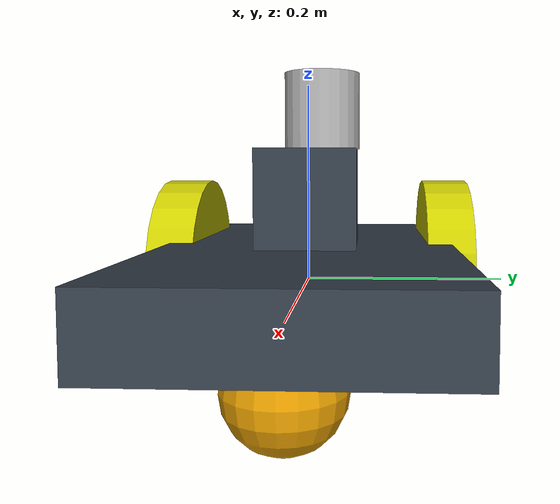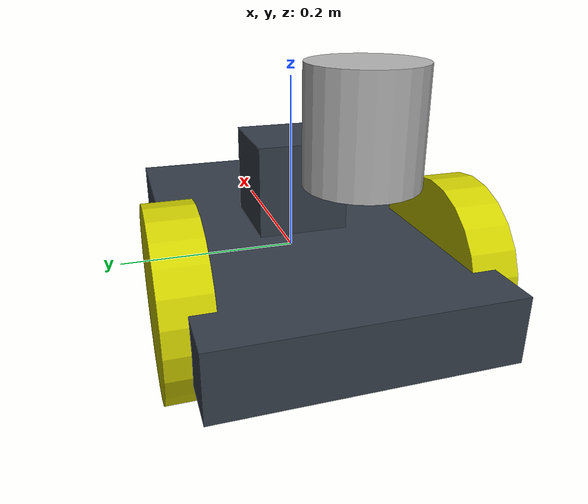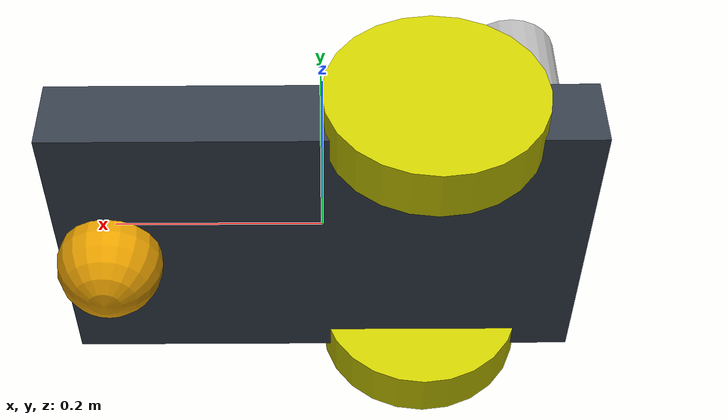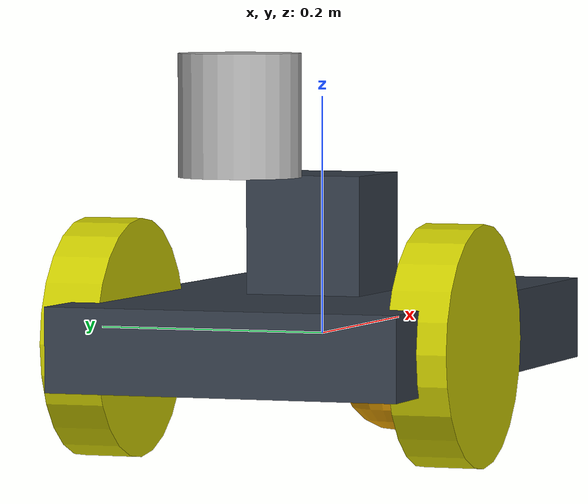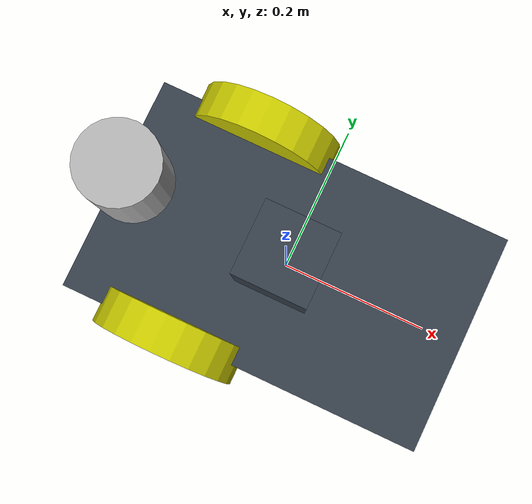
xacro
<?xml version='1.0'?>
<robot name="erl1" xmlns:xacro="http://www.ros.org/wiki/xacro">

    <!-- INCLUDE -->
    <xacro:include filename="$(find erl1)/urdf/erl1.gazebo" />

    <!-- PROPERTY -->
    <xacro:property name="length_wheel" value="0.05" />
    <xacro:property name="radius_wheel" value="0.1" />

    <!-- MACRO for wheels -->
    <xacro:macro name="default_inertial" params="mass">
    <inertial>
        <mass value="${mass}" />
        <origin rpy="0 1.5707 1.5707" xyz="0 0 0"/>
        <inertia
        ixx="${mass*(3*radius_wheel**2+length_wheel**2)/12}" ixy="0" ixz="0"
        iyy="${mass*(3*radius_wheel**2+length_wheel**2)/12}" iyz="0"
        izz="${mass*radius_wheel**2/2}"/>
    </inertial>
    </xacro:macro>

    <xacro:macro name="wheel_geometry">
        <origin xyz="0 0 0" rpy="0 1.5707 1.5707"/>
        <geometry>
        <cylinder length="${length_wheel}" radius="${radius_wheel}"/>
        </geometry>
    </xacro:macro>

    <xacro:macro name="wheel_collision">
        <origin xyz="0 0 0" rpy="0 1.5707 1.5707"/>
        <geometry>
            <cylinder radius="${radius_wheel}" length="${length_wheel}"/>
        </geometry>
    </xacro:macro>

    <!-- MATERIAL -->
    <material name="blue">
        <color rgba="0.203125 0.23828125 0.28515625 1.0"/>
    </material>

    <material name="yellow">
        <color rgba="0.8 0.8 0 1.0"/>
    </material>

    <material name="green">
        <color rgba="0.2 0.8 0.3 1.0"/>
    </material>

    <!-- ......................................................................LINKS -->
    <!-- LINK CHASSIS -->
    <link name="link_chassis">
        <!-- inertial -->
        <inertial>
            <mass value="5"/>
            <origin rpy="0 0 0" xyz="0 0 0"/>
            <inertia ixx="0.0395416666667" ixy="0" ixz="0" iyy="0.106208333333" iyz="0" izz="0.141666666667"/>
        </inertial>

        <!-- body -->
        <collision name="collision_chassis">
            <geometry>
                <box size="0.5 0.3 0.07"/>
            </geometry>
        </collision>
        <visual>
            <origin rpy="0 0 0" xyz="0 0 0"/>
            <geometry>
                <box size="0.5 0.3 0.07"/>
            </geometry>
            <material name="blue"/>
        </visual>

        <!-- caster front -->
        <collision name="caster_front_collision">
            <origin rpy="0 0 0" xyz="0.2 0 -0.05"/>
            <geometry>
                <sphere radius="0.05"/>
            </geometry>
        </collision>
        <visual name="caster_front_visual">
            <origin rpy="0 0 0" xyz="0.2 0 -0.05"/>
            <geometry>
                <sphere radius="0.05"/>
            </geometry>
        </visual>
    </link>

    <!-- LINK LEFT-WHEEL -->
    <link name='left_wheel'>
        <xacro:default_inertial mass="5.0" />
        <collision>
            <xacro:wheel_collision/>
        </collision>
        <visual name='left_wheel_visual'>
            <xacro:wheel_geometry/>
            <material name="yellow"/>
        </visual>
    </link>

    <!-- LINK RIGHT-WHEEL -->
    <link name='right_wheel'>
        <xacro:default_inertial mass="5.0" />
        <collision>
            <xacro:wheel_collision/>
        </collision>
        <visual name='right_wheel_visual'>
            <xacro:wheel_geometry/>
            <material name="yellow"/>
        </visual>
    </link>

    <!-- CAMERA LINK -->
    <link name="camera_link">
        <visual name="camera_link">
            <origin xyz="0 0 0.05" rpy="0 0 0"/>
            <geometry>
                <box size="0.1 0.1 0.1"/>
            </geometry>
            <material name="blue"/>
        </visual>
        <collision>
            <origin xyz="0 0 0.05" rpy="0 0 0"/>
            <geometry>
                <box size="0.1 0.1 0.1"/>
            </geometry>
        </collision>
        <inertial>
            <mass value="0.3"/>
            <origin xyz="0 0 0.05" rpy="0 0 0"/>
            <inertia
                ixx="0.0005" ixy="0" ixz="0"
                iyy="0.0005" iyz="0"
                izz="0.0005"/>
        </inertial>
    </link>

    <!-- CAMERA LINK OPTICAL -->
    <link name="camera_link_optical">
    </link>

    <!-- IMU LINK -->
    <link name="imu_link">
    </link>

    <!-- GPS LINK -->
    <link name="navsat_link">
    </link>

    <!-- LIDAR LINK -->
    <link name='scan_link'>
        <inertial>
            <mass value="1e-5"/>
            <origin xyz="0 0 0" rpy="0 0 0"/>
            <inertia
                ixx="1e-6" ixy="0" ixz="0"
                iyy="1e-6" iyz="0"
                izz="1e-6"/>
        </inertial>
        <collision name='collision'>
            <origin xyz="0 0 0" rpy="0 0 0"/>
            <geometry>
                <box size=".1 .1 .1"/>
            </geometry>
        </collision>
        <visual name='scan_link_visual'>
            <origin xyz="0 0 0" rpy="0 0 0"/>
            <geometry>
                <cylinder radius="0.05" length="0.1"/>
            </geometry>
        </visual>
    </link>

    <!-- ......................................................................JOINTS -->
    <!-- JOINT LEFT-WHEEL -->
    <joint type="continuous" name="left_wheel_joint">
        <origin xyz="-0.1 0.15 0" rpy="0 0 0"/>
        <child link="left_wheel"/>
        <parent link="link_chassis"/>
        <axis xyz="0 1 0"/>
        <limit effort="100" velocity="10"/>
        <dynamics damping="1.0" friction="1.0"/>
    </joint>

    <!-- JOINT RIGHT-WHEEL -->
    <joint type="continuous" name="right_wheel_joint">
        <origin xyz="-0.1 -0.15 0" rpy="0 0 0"/>
        <child link="right_wheel"/>
        <parent link="link_chassis"/>
        <axis xyz="0 1 0"/>
        <limit effort="100" velocity="10"/>
        <dynamics damping="1.0" friction="1.0"/>
    </joint>

    <!-- JOINT CAMERA -->
    <joint name="camera_joint" type="revolute">
        <parent link="link_chassis"/>
        <child link="camera_link"/>
        <origin xyz="0 0 0.035" rpy="0 0 0"/>
        <axis xyz="0 0 1"/>
        <limit lower="-1.57" upper="1.57" effort="5" velocity="1.0"/>
    </joint>

    <!-- JOINT CAMERA OPTICAL -->
    <joint type="fixed" name="camera_optical_joint">
        <origin xyz="0 0 0" rpy="-1.5707 0 -1.5707"/>
        <child link="camera_link_optical"/>
        <parent link="camera_link"/>
    </joint>

    <!-- JOINT IMU -->
    <joint name="imu_joint" type="fixed">
        <origin xyz="0 0 0" rpy="0 0 0" />
        <parent link="link_chassis"/>
        <child link="imu_link" />
    </joint>

    <!-- JOINT GPS -->
    <joint name="navsat_joint" type="fixed">
        <origin xyz="0 0 0" rpy="0 0 0"/>
        <parent link="link_chassis"/>
        <child link="navsat_link" />
    </joint>

    <!-- JOINT LIDAR -->
    <joint type="fixed" name="scan_joint">
        <origin xyz="-0.2 0 0.19" rpy="0 0 0"/>
        <child link="scan_link"/>
        <parent link="link_chassis"/>
    </joint>

</robot>
